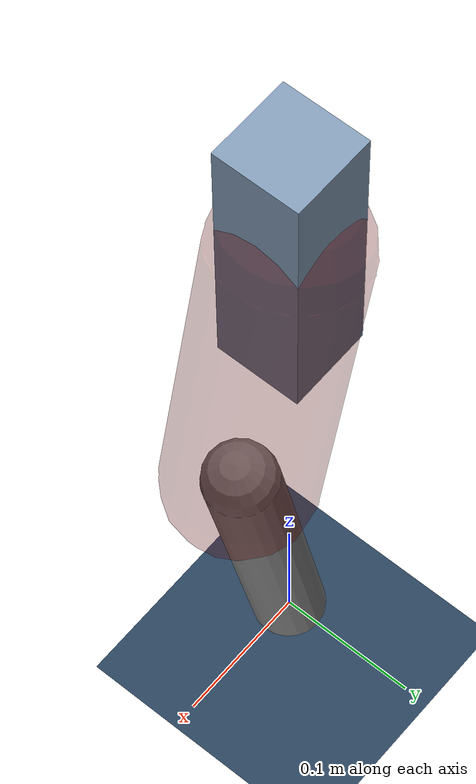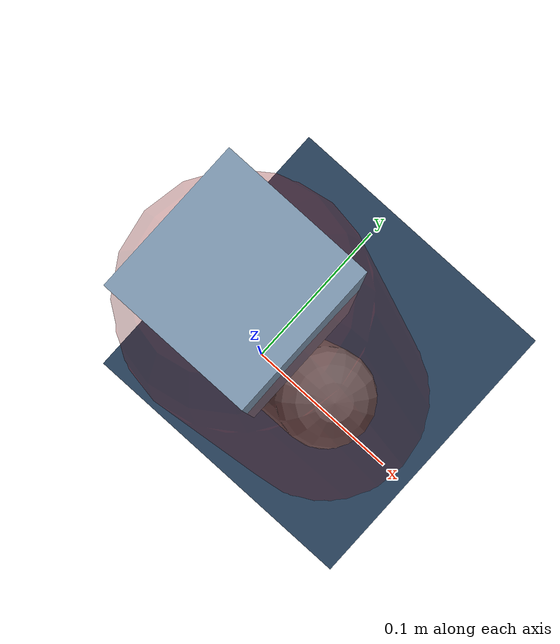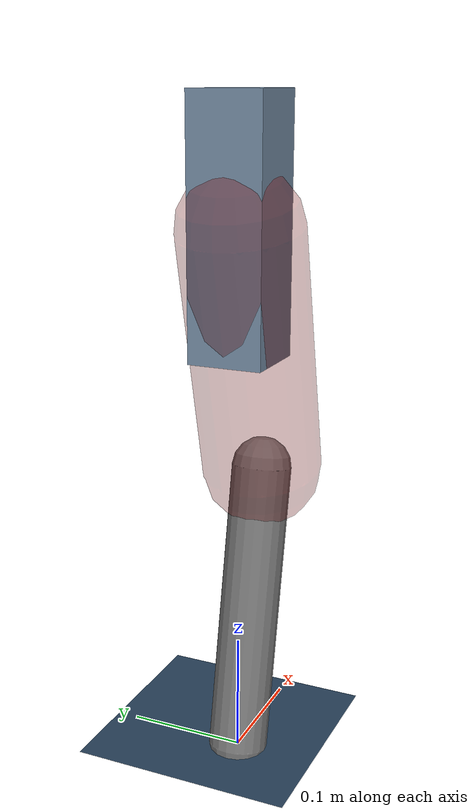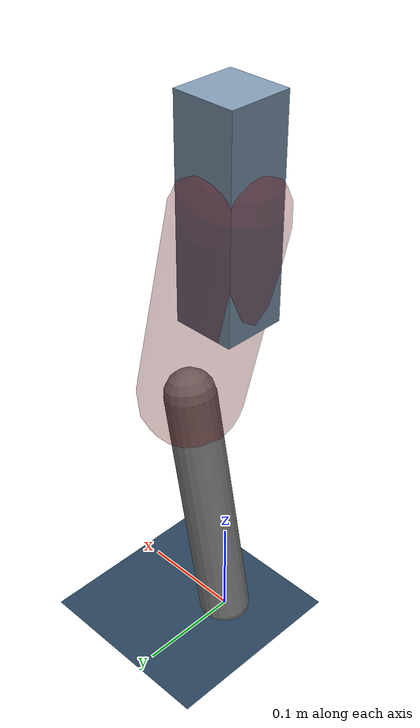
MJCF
<mujoco model="Hopper2D">
	<compiler inertiafromgeom="true" angle="radian" />
	<option timestep="0.001" integrator="implicit" cone="elliptic" solver="Newton" tolerance="1e-10" />

	<default>
		<geom contype="1" conaffinity="1" condim="3" friction="2 0.005 0.0001" solref="0.005 1" />
		<joint limited="true" damping="0.1" />
	</default>

	<asset>
		<texture name="skybox" type="skybox" builtin="gradient" rgb1=".4 .6 .8" rgb2="0 0 0" width="800" height="800" />
		<texture name="grid" type="2d" builtin="checker" rgb1=".1 .2 .3" rgb2=".2 .3 .4" width="300" height="300" mark="edge" markrgb=".2 .3 .4" />
		<material name="ground" texture="grid" texrepeat="1 1" texuniform="true" reflectance="0.1" />
		<material name="leg" rgba="0.5 0.6 0.7 1" />
	</asset>

	<worldbody>

		<geom name="floor" type="plane" size="5 5 0.25" material="ground" />

		<light directional="false" diffuse="0.8 0.8 0.8" specular="0.3 0.3 0.3" pos="0 0 2" dir="0 0 -1" />
		<light mode="targetbodycom" target="base" directional="false" diffuse="0.8 0.8 0.8" specular="0.3 0.3 0.3" pos="0 0 2" dir="0 0 -1" />

		<camera name="fixed" pos="0 -2 1" xyaxes="1 0 0 0 0 1" />
		<camera name="tracking" mode="trackcom" pos="0 -3 1" />

		<body name="root" pos="0 0 0.44323099287991985">
			<joint name="slide_x" type="slide" axis="1 0 0" range="-100 100" />
			<joint name="slide_z" type="slide" axis="0 0 1" range="0 10" />

			<body name="base" pos="0 0 0">
				<geom name="torso" type="box" size="0.03 0.03 0.1" mass="3.05" material="leg" />

				<body name="link1" pos="0 0 0" euler="0 1.3407364724570614 0">
					<joint type="hinge" axis="0 -1 0" pos="0 0 0" name="hinge1" limited="true" range="-3.14 3.14" stiffness="0" damping="0.1" />
					<geom name="thigh" type="capsule" fromto="0 0 0 0.2067684624909569 0 0" size="0.05" rgba="0.5 0 0 0.3" mass="0.7465211562273922" />

					<body name="link2" pos="0.2067684624909569 0 0" euler="0 0.42255592250268137 0">
						<joint type="hinge" axis="0 -1 0" pos="0 0 0" name="hinge2" limited="true" range="-3.14 3.14" stiffness="0" damping="0.1" />
						<geom name="shank" type="capsule" fromto="0 0 0 0.24646253038896293 0 0" size="0.025" mass="0.43961627735006664" />

					</body>
				</body>
			</body>
		</body>
	</worldbody>

	<actuator>
		<motor name="torque1" joint="hinge1" ctrlrange="-91.33620564529211 91.33620564529211" ctrllimited="true" gear="1" />
		<motor name="torque2" joint="hinge2" ctrlrange="-175.5629852977259 175.5629852977259" ctrllimited="true" gear="1" />
	</actuator>
</mujoco>
